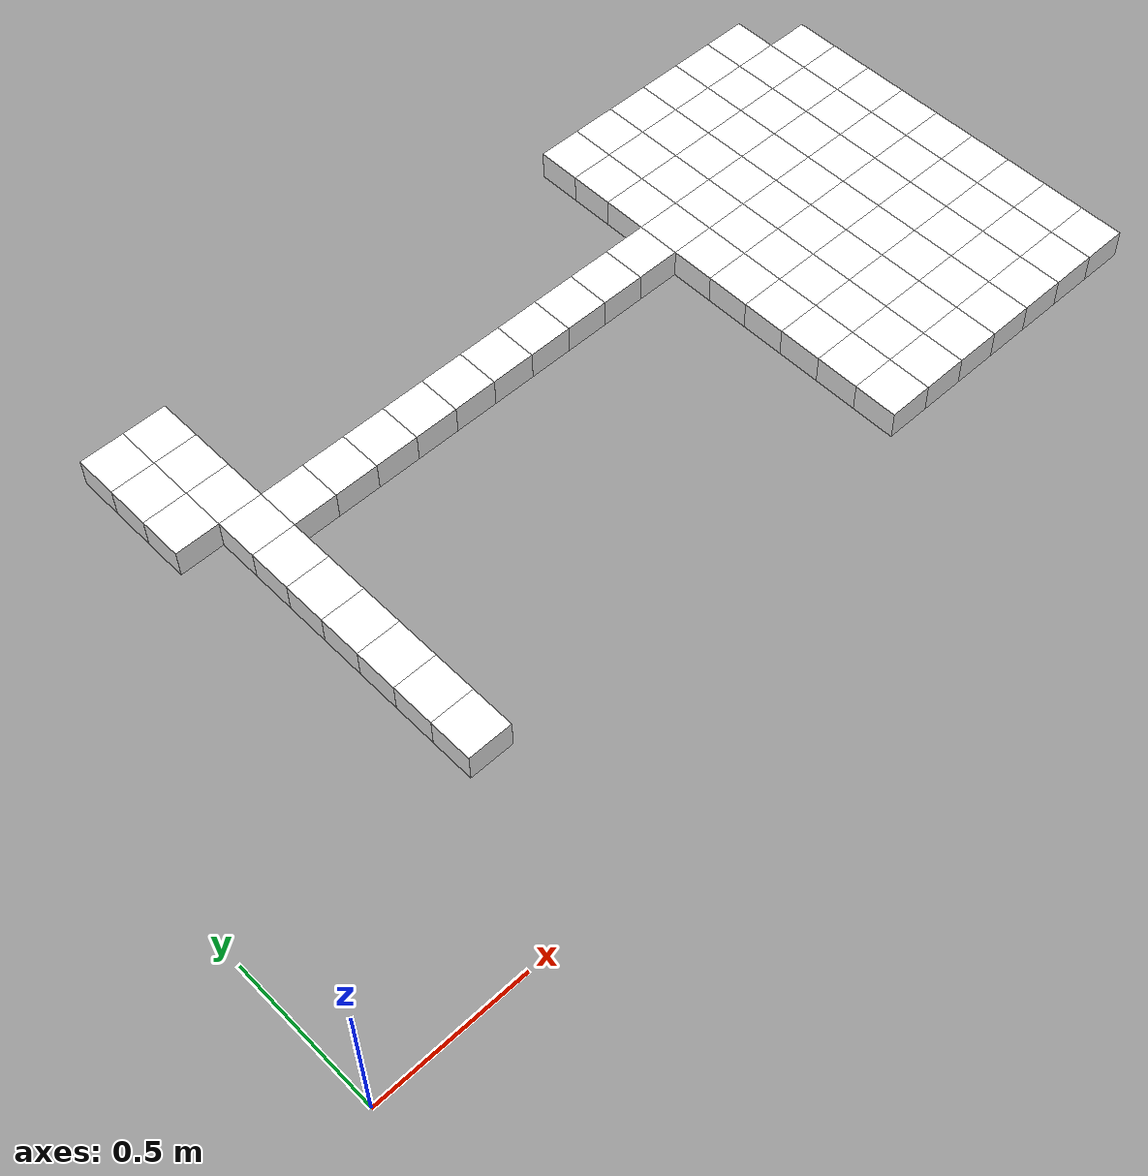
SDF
<sdf version="1.7">
 <world name="default">
  <include><uri>model://sun</uri></include>
  <model name="static_environment">
   <static>true</static>
   <link name="region_19">
    <pose>0.8499999999999992 0.6 0.0 0.0 0.0 0.0</pose>
    <collision name="region_19_collision">
     <geometry><box><size>0.15 0.15 0.1</size></box></geometry>
     <surface><friction><ode><mu>1.0</mu><mu2>1.0</mu2></ode></friction></surface>
    </collision>
    <visual name="region_19_visual">
     <geometry><box><size>0.15 0.15 0.1</size></box></geometry>
     <material><ambient>1.0 1.0 1.0 1.0</ambient><diffuse>1.0 1.0 1.0 1.0</diffuse></material>
    </visual>
   </link>
   <link name="region_39">
    <pose>0.8499999999999992 0.75 0.0 0.0 0.0 0.0</pose>
    <collision name="region_39_collision">
     <geometry><box><size>0.15 0.15 0.1</size></box></geometry>
     <surface><friction><ode><mu>1.0</mu><mu2>1.0</mu2></ode></friction></surface>
    </collision>
    <visual name="region_39_visual">
     <geometry><box><size>0.15 0.15 0.1</size></box></geometry>
     <material><ambient>1.0 1.0 1.0 1.0</ambient><diffuse>1.0 1.0 1.0 1.0</diffuse></material>
    </visual>
   </link>
   <link name="region_59">
    <pose>0.8499999999999992 0.8999999999999999 0.0 0.0 0.0 0.0</pose>
    <collision name="region_59_collision">
     <geometry><box><size>0.15 0.15 0.1</size></box></geometry>
     <surface><friction><ode><mu>1.0</mu><mu2>1.0</mu2></ode></friction></surface>
    </collision>
    <visual name="region_59_visual">
     <geometry><box><size>0.15 0.15 0.1</size></box></geometry>
     <material><ambient>1.0 1.0 1.0 1.0</ambient><diffuse>1.0 1.0 1.0 1.0</diffuse></material>
    </visual>
   </link>
   <link name="region_79">
    <pose>0.8499999999999992 1.0499999999999998 0.0 0.0 0.0 0.0</pose>
    <collision name="region_79_collision">
     <geometry><box><size>0.15 0.15 0.1</size></box></geometry>
     <surface><friction><ode><mu>1.0</mu><mu2>1.0</mu2></ode></friction></surface>
    </collision>
    <visual name="region_79_visual">
     <geometry><box><size>0.15 0.15 0.1</size></box></geometry>
     <material><ambient>1.0 1.0 1.0 1.0</ambient><diffuse>1.0 1.0 1.0 1.0</diffuse></material>
    </visual>
   </link>
   <link name="region_99">
    <pose>0.8499999999999992 1.2 0.0 0.0 0.0 0.0</pose>
    <collision name="region_99_collision">
     <geometry><box><size>0.15 0.15 0.1</size></box></geometry>
     <surface><friction><ode><mu>1.0</mu><mu2>1.0</mu2></ode></friction></surface>
    </collision>
    <visual name="region_99_visual">
     <geometry><box><size>0.15 0.15 0.1</size></box></geometry>
     <material><ambient>1.0 1.0 1.0 1.0</ambient><diffuse>1.0 1.0 1.0 1.0</diffuse></material>
    </visual>
   </link>
   <link name="region_119">
    <pose>0.8499999999999992 1.35 0.0 0.0 0.0 0.0</pose>
    <collision name="region_119_collision">
     <geometry><box><size>0.15 0.15 0.1</size></box></geometry>
     <surface><friction><ode><mu>1.0</mu><mu2>1.0</mu2></ode></friction></surface>
    </collision>
    <visual name="region_119_visual">
     <geometry><box><size>0.15 0.15 0.1</size></box></geometry>
     <material><ambient>1.0 1.0 1.0 1.0</ambient><diffuse>1.0 1.0 1.0 1.0</diffuse></material>
    </visual>
   </link>
   <link name="region_139">
    <pose>0.8499999999999992 1.5 0.0 0.0 0.0 0.0</pose>
    <collision name="region_139_collision">
     <geometry><box><size>0.15 0.15 0.1</size></box></geometry>
     <surface><friction><ode><mu>1.0</mu><mu2>1.0</mu2></ode></friction></surface>
    </collision>
    <visual name="region_139_visual">
     <geometry><box><size>0.15 0.15 0.1</size></box></geometry>
     <material><ambient>1.0 1.0 1.0 1.0</ambient><diffuse>1.0 1.0 1.0 1.0</diffuse></material>
    </visual>
   </link>
   <link name="region_158">
    <pose>0.6999999999999993 1.65 0.0 0.0 0.0 0.0</pose>
    <collision name="region_158_collision">
     <geometry><box><size>0.15 0.15 0.1</size></box></geometry>
     <surface><friction><ode><mu>1.0</mu><mu2>1.0</mu2></ode></friction></surface>
    </collision>
    <visual name="region_158_visual">
     <geometry><box><size>0.15 0.15 0.1</size></box></geometry>
     <material><ambient>1.0 1.0 1.0 1.0</ambient><diffuse>1.0 1.0 1.0 1.0</diffuse></material>
    </visual>
   </link>
   <link name="region_159">
    <pose>0.8499999999999992 1.65 0.0 0.0 0.0 0.0</pose>
    <collision name="region_159_collision">
     <geometry><box><size>0.15 0.15 0.1</size></box></geometry>
     <surface><friction><ode><mu>1.0</mu><mu2>1.0</mu2></ode></friction></surface>
    </collision>
    <visual name="region_159_visual">
     <geometry><box><size>0.15 0.15 0.1</size></box></geometry>
     <material><ambient>1.0 1.0 1.0 1.0</ambient><diffuse>1.0 1.0 1.0 1.0</diffuse></material>
    </visual>
   </link>
   <link name="region_178">
    <pose>0.6999999999999993 1.7999999999999998 0.0 0.0 0.0 0.0</pose>
    <collision name="region_178_collision">
     <geometry><box><size>0.15 0.15 0.1</size></box></geometry>
     <surface><friction><ode><mu>1.0</mu><mu2>1.0</mu2></ode></friction></surface>
    </collision>
    <visual name="region_178_visual">
     <geometry><box><size>0.15 0.15 0.1</size></box></geometry>
     <material><ambient>1.0 1.0 1.0 1.0</ambient><diffuse>1.0 1.0 1.0 1.0</diffuse></material>
    </visual>
   </link>
   <link name="region_179">
    <pose>0.8499999999999992 1.7999999999999998 0.0 0.0 0.0 0.0</pose>
    <collision name="region_179_collision">
     <geometry><box><size>0.15 0.15 0.1</size></box></geometry>
     <surface><friction><ode><mu>1.0</mu><mu2>1.0</mu2></ode></friction></surface>
    </collision>
    <visual name="region_179_visual">
     <geometry><box><size>0.15 0.15 0.1</size></box></geometry>
     <material><ambient>1.0 1.0 1.0 1.0</ambient><diffuse>1.0 1.0 1.0 1.0</diffuse></material>
    </visual>
   </link>
   <link name="region_198">
    <pose>0.6999999999999993 1.9499999999999997 0.0 0.0 0.0 0.0</pose>
    <collision name="region_198_collision">
     <geometry><box><size>0.15 0.15 0.1</size></box></geometry>
     <surface><friction><ode><mu>1.0</mu><mu2>1.0</mu2></ode></friction></surface>
    </collision>
    <visual name="region_198_visual">
     <geometry><box><size>0.15 0.15 0.1</size></box></geometry>
     <material><ambient>1.0 1.0 1.0 1.0</ambient><diffuse>1.0 1.0 1.0 1.0</diffuse></material>
    </visual>
   </link>
   <link name="region_199">
    <pose>0.8499999999999992 1.9499999999999997 0.0 0.0 0.0 0.0</pose>
    <collision name="region_199_collision">
     <geometry><box><size>0.15 0.15 0.1</size></box></geometry>
     <surface><friction><ode><mu>1.0</mu><mu2>1.0</mu2></ode></friction></surface>
    </collision>
    <visual name="region_199_visual">
     <geometry><box><size>0.15 0.15 0.1</size></box></geometry>
     <material><ambient>1.0 1.0 1.0 1.0</ambient><diffuse>1.0 1.0 1.0 1.0</diffuse></material>
    </visual>
   </link>
   <link name="region_400">
    <pose>1.0 1.5 0.0 0.0 0.0 0.0</pose>
    <collision name="region_400_collision">
     <geometry><box><size>0.15 0.15 0.1</size></box></geometry>
     <surface><friction><ode><mu>1.0</mu><mu2>1.0</mu2></ode></friction></surface>
    </collision>
    <visual name="region_400_visual">
     <geometry><box><size>0.15 0.15 0.1</size></box></geometry>
     <material><ambient>1.0 1.0 1.0 1.0</ambient><diffuse>1.0 1.0 1.0 1.0</diffuse></material>
    </visual>
   </link>
   <link name="region_401">
    <pose>1.15 1.5 0.0 0.0 0.0 0.0</pose>
    <collision name="region_401_collision">
     <geometry><box><size>0.15 0.15 0.1</size></box></geometry>
     <surface><friction><ode><mu>1.0</mu><mu2>1.0</mu2></ode></friction></surface>
    </collision>
    <visual name="region_401_visual">
     <geometry><box><size>0.15 0.15 0.1</size></box></geometry>
     <material><ambient>1.0 1.0 1.0 1.0</ambient><diffuse>1.0 1.0 1.0 1.0</diffuse></material>
    </visual>
   </link>
   <link name="region_402">
    <pose>1.2999999999999998 1.5 0.0 0.0 0.0 0.0</pose>
    <collision name="region_402_collision">
     <geometry><box><size>0.15 0.15 0.1</size></box></geometry>
     <surface><friction><ode><mu>1.0</mu><mu2>1.0</mu2></ode></friction></surface>
    </collision>
    <visual name="region_402_visual">
     <geometry><box><size>0.15 0.15 0.1</size></box></geometry>
     <material><ambient>1.0 1.0 1.0 1.0</ambient><diffuse>1.0 1.0 1.0 1.0</diffuse></material>
    </visual>
   </link>
   <link name="region_403">
    <pose>1.4499999999999997 1.5 0.0 0.0 0.0 0.0</pose>
    <collision name="region_403_collision">
     <geometry><box><size>0.15 0.15 0.1</size></box></geometry>
     <surface><friction><ode><mu>1.0</mu><mu2>1.0</mu2></ode></friction></surface>
    </collision>
    <visual name="region_403_visual">
     <geometry><box><size>0.15 0.15 0.1</size></box></geometry>
     <material><ambient>1.0 1.0 1.0 1.0</ambient><diffuse>1.0 1.0 1.0 1.0</diffuse></material>
    </visual>
   </link>
   <link name="region_404">
    <pose>1.5999999999999996 1.5 0.0 0.0 0.0 0.0</pose>
    <collision name="region_404_collision">
     <geometry><box><size>0.15 0.15 0.1</size></box></geometry>
     <surface><friction><ode><mu>1.0</mu><mu2>1.0</mu2></ode></friction></surface>
    </collision>
    <visual name="region_404_visual">
     <geometry><box><size>0.15 0.15 0.1</size></box></geometry>
     <material><ambient>1.0 1.0 1.0 1.0</ambient><diffuse>1.0 1.0 1.0 1.0</diffuse></material>
    </visual>
   </link>
   <link name="region_405">
    <pose>1.7499999999999996 1.5 0.0 0.0 0.0 0.0</pose>
    <collision name="region_405_collision">
     <geometry><box><size>0.15 0.15 0.1</size></box></geometry>
     <surface><friction><ode><mu>1.0</mu><mu2>1.0</mu2></ode></friction></surface>
    </collision>
    <visual name="region_405_visual">
     <geometry><box><size>0.15 0.15 0.1</size></box></geometry>
     <material><ambient>1.0 1.0 1.0 1.0</ambient><diffuse>1.0 1.0 1.0 1.0</diffuse></material>
    </visual>
   </link>
   <link name="region_406">
    <pose>1.8999999999999995 1.5 0.0 0.0 0.0 0.0</pose>
    <collision name="region_406_collision">
     <geometry><box><size>0.15 0.15 0.1</size></box></geometry>
     <surface><friction><ode><mu>1.0</mu><mu2>1.0</mu2></ode></friction></surface>
    </collision>
    <visual name="region_406_visual">
     <geometry><box><size>0.15 0.15 0.1</size></box></geometry>
     <material><ambient>1.0 1.0 1.0 1.0</ambient><diffuse>1.0 1.0 1.0 1.0</diffuse></material>
    </visual>
   </link>
   <link name="region_407">
    <pose>2.05 1.5 0.0 0.0 0.0 0.0</pose>
    <collision name="region_407_collision">
     <geometry><box><size>0.15 0.15 0.1</size></box></geometry>
     <surface><friction><ode><mu>1.0</mu><mu2>1.0</mu2></ode></friction></surface>
    </collision>
    <visual name="region_407_visual">
     <geometry><box><size>0.15 0.15 0.1</size></box></geometry>
     <material><ambient>1.0 1.0 1.0 1.0</ambient><diffuse>1.0 1.0 1.0 1.0</diffuse></material>
    </visual>
   </link>
   <link name="region_408">
    <pose>2.2 1.5 0.0 0.0 0.0 0.0</pose>
    <collision name="region_408_collision">
     <geometry><box><size>0.15 0.15 0.1</size></box></geometry>
     <surface><friction><ode><mu>1.0</mu><mu2>1.0</mu2></ode></friction></surface>
    </collision>
    <visual name="region_408_visual">
     <geometry><box><size>0.15 0.15 0.1</size></box></geometry>
     <material><ambient>1.0 1.0 1.0 1.0</ambient><diffuse>1.0 1.0 1.0 1.0</diffuse></material>
    </visual>
   </link>
   <link name="region_409">
    <pose>2.3500000000000005 1.5 0.0 0.0 0.0 0.0</pose>
    <collision name="region_409_collision">
     <geometry><box><size>0.15 0.15 0.1</size></box></geometry>
     <surface><friction><ode><mu>1.0</mu><mu2>1.0</mu2></ode></friction></surface>
    </collision>
    <visual name="region_409_visual">
     <geometry><box><size>0.15 0.15 0.1</size></box></geometry>
     <material><ambient>1.0 1.0 1.0 1.0</ambient><diffuse>1.0 1.0 1.0 1.0</diffuse></material>
    </visual>
   </link>
   <link name="region_420">
    <pose>2.5 0.6 0.0 0.0 0.0 0.0</pose>
    <collision name="region_420_collision">
     <geometry><box><size>0.15 0.15 0.1</size></box></geometry>
     <surface><friction><ode><mu>1.0</mu><mu2>1.0</mu2></ode></friction></surface>
    </collision>
    <visual name="region_420_visual">
     <geometry><box><size>0.15 0.15 0.1</size></box></geometry>
     <material><ambient>1.0 1.0 1.0 1.0</ambient><diffuse>1.0 1.0 1.0 1.0</diffuse></material>
    </visual>
   </link>
   <link name="region_421">
    <pose>2.6500000000000004 0.6 0.0 0.0 0.0 0.0</pose>
    <collision name="region_421_collision">
     <geometry><box><size>0.15 0.15 0.1</size></box></geometry>
     <surface><friction><ode><mu>1.0</mu><mu2>1.0</mu2></ode></friction></surface>
    </collision>
    <visual name="region_421_visual">
     <geometry><box><size>0.15 0.15 0.1</size></box></geometry>
     <material><ambient>1.0 1.0 1.0 1.0</ambient><diffuse>1.0 1.0 1.0 1.0</diffuse></material>
    </visual>
   </link>
   <link name="region_422">
    <pose>2.8000000000000007 0.6 0.0 0.0 0.0 0.0</pose>
    <collision name="region_422_collision">
     <geometry><box><size>0.15 0.15 0.1</size></box></geometry>
     <surface><friction><ode><mu>1.0</mu><mu2>1.0</mu2></ode></friction></surface>
    </collision>
    <visual name="region_422_visual">
     <geometry><box><size>0.15 0.15 0.1</size></box></geometry>
     <material><ambient>1.0 1.0 1.0 1.0</ambient><diffuse>1.0 1.0 1.0 1.0</diffuse></material>
    </visual>
   </link>
   <link name="region_423">
    <pose>2.950000000000001 0.6 0.0 0.0 0.0 0.0</pose>
    <collision name="region_423_collision">
     <geometry><box><size>0.15 0.15 0.1</size></box></geometry>
     <surface><friction><ode><mu>1.0</mu><mu2>1.0</mu2></ode></friction></surface>
    </collision>
    <visual name="region_423_visual">
     <geometry><box><size>0.15 0.15 0.1</size></box></geometry>
     <material><ambient>1.0 1.0 1.0 1.0</ambient><diffuse>1.0 1.0 1.0 1.0</diffuse></material>
    </visual>
   </link>
   <link name="region_424">
    <pose>3.1000000000000014 0.6 0.0 0.0 0.0 0.0</pose>
    <collision name="region_424_collision">
     <geometry><box><size>0.15 0.15 0.1</size></box></geometry>
     <surface><friction><ode><mu>1.0</mu><mu2>1.0</mu2></ode></friction></surface>
    </collision>
    <visual name="region_424_visual">
     <geometry><box><size>0.15 0.15 0.1</size></box></geometry>
     <material><ambient>1.0 1.0 1.0 1.0</ambient><diffuse>1.0 1.0 1.0 1.0</diffuse></material>
    </visual>
   </link>
   <link name="region_425">
    <pose>3.2500000000000018 0.6 0.0 0.0 0.0 0.0</pose>
    <collision name="region_425_collision">
     <geometry><box><size>0.15 0.15 0.1</size></box></geometry>
     <surface><friction><ode><mu>1.0</mu><mu2>1.0</mu2></ode></friction></surface>
    </collision>
    <visual name="region_425_visual">
     <geometry><box><size>0.15 0.15 0.1</size></box></geometry>
     <material><ambient>1.0 1.0 1.0 1.0</ambient><diffuse>1.0 1.0 1.0 1.0</diffuse></material>
    </visual>
   </link>
   <link name="region_426">
    <pose>3.400000000000002 0.6 0.0 0.0 0.0 0.0</pose>
    <collision name="region_426_collision">
     <geometry><box><size>0.15 0.15 0.1</size></box></geometry>
     <surface><friction><ode><mu>1.0</mu><mu2>1.0</mu2></ode></friction></surface>
    </collision>
    <visual name="region_426_visual">
     <geometry><box><size>0.15 0.15 0.1</size></box></geometry>
     <material><ambient>1.0 1.0 1.0 1.0</ambient><diffuse>1.0 1.0 1.0 1.0</diffuse></material>
    </visual>
   </link>
   <link name="region_440">
    <pose>2.5 0.75 0.0 0.0 0.0 0.0</pose>
    <collision name="region_440_collision">
     <geometry><box><size>0.15 0.15 0.1</size></box></geometry>
     <surface><friction><ode><mu>1.0</mu><mu2>1.0</mu2></ode></friction></surface>
    </collision>
    <visual name="region_440_visual">
     <geometry><box><size>0.15 0.15 0.1</size></box></geometry>
     <material><ambient>1.0 1.0 1.0 1.0</ambient><diffuse>1.0 1.0 1.0 1.0</diffuse></material>
    </visual>
   </link>
   <link name="region_441">
    <pose>2.6500000000000004 0.75 0.0 0.0 0.0 0.0</pose>
    <collision name="region_441_collision">
     <geometry><box><size>0.15 0.15 0.1</size></box></geometry>
     <surface><friction><ode><mu>1.0</mu><mu2>1.0</mu2></ode></friction></surface>
    </collision>
    <visual name="region_441_visual">
     <geometry><box><size>0.15 0.15 0.1</size></box></geometry>
     <material><ambient>1.0 1.0 1.0 1.0</ambient><diffuse>1.0 1.0 1.0 1.0</diffuse></material>
    </visual>
   </link>
   <link name="region_442">
    <pose>2.8000000000000007 0.75 0.0 0.0 0.0 0.0</pose>
    <collision name="region_442_collision">
     <geometry><box><size>0.15 0.15 0.1</size></box></geometry>
     <surface><friction><ode><mu>1.0</mu><mu2>1.0</mu2></ode></friction></surface>
    </collision>
    <visual name="region_442_visual">
     <geometry><box><size>0.15 0.15 0.1</size></box></geometry>
     <material><ambient>1.0 1.0 1.0 1.0</ambient><diffuse>1.0 1.0 1.0 1.0</diffuse></material>
    </visual>
   </link>
   <link name="region_443">
    <pose>2.950000000000001 0.75 0.0 0.0 0.0 0.0</pose>
    <collision name="region_443_collision">
     <geometry><box><size>0.15 0.15 0.1</size></box></geometry>
     <surface><friction><ode><mu>1.0</mu><mu2>1.0</mu2></ode></friction></surface>
    </collision>
    <visual name="region_443_visual">
     <geometry><box><size>0.15 0.15 0.1</size></box></geometry>
     <material><ambient>1.0 1.0 1.0 1.0</ambient><diffuse>1.0 1.0 1.0 1.0</diffuse></material>
    </visual>
   </link>
   <link name="region_444">
    <pose>3.1000000000000014 0.75 0.0 0.0 0.0 0.0</pose>
    <collision name="region_444_collision">
     <geometry><box><size>0.15 0.15 0.1</size></box></geometry>
     <surface><friction><ode><mu>1.0</mu><mu2>1.0</mu2></ode></friction></surface>
    </collision>
    <visual name="region_444_visual">
     <geometry><box><size>0.15 0.15 0.1</size></box></geometry>
     <material><ambient>1.0 1.0 1.0 1.0</ambient><diffuse>1.0 1.0 1.0 1.0</diffuse></material>
    </visual>
   </link>
   <link name="region_445">
    <pose>3.2500000000000018 0.75 0.0 0.0 0.0 0.0</pose>
    <collision name="region_445_collision">
     <geometry><box><size>0.15 0.15 0.1</size></box></geometry>
     <surface><friction><ode><mu>1.0</mu><mu2>1.0</mu2></ode></friction></surface>
    </collision>
    <visual name="region_445_visual">
     <geometry><box><size>0.15 0.15 0.1</size></box></geometry>
     <material><ambient>1.0 1.0 1.0 1.0</ambient><diffuse>1.0 1.0 1.0 1.0</diffuse></material>
    </visual>
   </link>
   <link name="region_446">
    <pose>3.400000000000002 0.75 0.0 0.0 0.0 0.0</pose>
    <collision name="region_446_collision">
     <geometry><box><size>0.15 0.15 0.1</size></box></geometry>
     <surface><friction><ode><mu>1.0</mu><mu2>1.0</mu2></ode></friction></surface>
    </collision>
    <visual name="region_446_visual">
     <geometry><box><size>0.15 0.15 0.1</size></box></geometry>
     <material><ambient>1.0 1.0 1.0 1.0</ambient><diffuse>1.0 1.0 1.0 1.0</diffuse></material>
    </visual>
   </link>
   <link name="region_460">
    <pose>2.5 0.8999999999999999 0.0 0.0 0.0 0.0</pose>
    <collision name="region_460_collision">
     <geometry><box><size>0.15 0.15 0.1</size></box></geometry>
     <surface><friction><ode><mu>1.0</mu><mu2>1.0</mu2></ode></friction></surface>
    </collision>
    <visual name="region_460_visual">
     <geometry><box><size>0.15 0.15 0.1</size></box></geometry>
     <material><ambient>1.0 1.0 1.0 1.0</ambient><diffuse>1.0 1.0 1.0 1.0</diffuse></material>
    </visual>
   </link>
   <link name="region_461">
    <pose>2.6500000000000004 0.8999999999999999 0.0 0.0 0.0 0.0</pose>
    <collision name="region_461_collision">
     <geometry><box><size>0.15 0.15 0.1</size></box></geometry>
     <surface><friction><ode><mu>1.0</mu><mu2>1.0</mu2></ode></friction></surface>
    </collision>
    <visual name="region_461_visual">
     <geometry><box><size>0.15 0.15 0.1</size></box></geometry>
     <material><ambient>1.0 1.0 1.0 1.0</ambient><diffuse>1.0 1.0 1.0 1.0</diffuse></material>
    </visual>
   </link>
   <link name="region_462">
    <pose>2.8000000000000007 0.8999999999999999 0.0 0.0 0.0 0.0</pose>
    <collision name="region_462_collision">
     <geometry><box><size>0.15 0.15 0.1</size></box></geometry>
     <surface><friction><ode><mu>1.0</mu><mu2>1.0</mu2></ode></friction></surface>
    </collision>
    <visual name="region_462_visual">
     <geometry><box><size>0.15 0.15 0.1</size></box></geometry>
     <material><ambient>1.0 1.0 1.0 1.0</ambient><diffuse>1.0 1.0 1.0 1.0</diffuse></material>
    </visual>
   </link>
   <link name="region_463">
    <pose>2.950000000000001 0.8999999999999999 0.0 0.0 0.0 0.0</pose>
    <collision name="region_463_collision">
     <geometry><box><size>0.15 0.15 0.1</size></box></geometry>
     <surface><friction><ode><mu>1.0</mu><mu2>1.0</mu2></ode></friction></surface>
    </collision>
    <visual name="region_463_visual">
     <geometry><box><size>0.15 0.15 0.1</size></box></geometry>
     <material><ambient>1.0 1.0 1.0 1.0</ambient><diffuse>1.0 1.0 1.0 1.0</diffuse></material>
    </visual>
   </link>
   <link name="region_464">
    <pose>3.1000000000000014 0.8999999999999999 0.0 0.0 0.0 0.0</pose>
    <collision name="region_464_collision">
     <geometry><box><size>0.15 0.15 0.1</size></box></geometry>
     <surface><friction><ode><mu>1.0</mu><mu2>1.0</mu2></ode></friction></surface>
    </collision>
    <visual name="region_464_visual">
     <geometry><box><size>0.15 0.15 0.1</size></box></geometry>
     <material><ambient>1.0 1.0 1.0 1.0</ambient><diffuse>1.0 1.0 1.0 1.0</diffuse></material>
    </visual>
   </link>
   <link name="region_465">
    <pose>3.2500000000000018 0.8999999999999999 0.0 0.0 0.0 0.0</pose>
    <collision name="region_465_collision">
     <geometry><box><size>0.15 0.15 0.1</size></box></geometry>
     <surface><friction><ode><mu>1.0</mu><mu2>1.0</mu2></ode></friction></surface>
    </collision>
    <visual name="region_465_visual">
     <geometry><box><size>0.15 0.15 0.1</size></box></geometry>
     <material><ambient>1.0 1.0 1.0 1.0</ambient><diffuse>1.0 1.0 1.0 1.0</diffuse></material>
    </visual>
   </link>
   <link name="region_466">
    <pose>3.400000000000002 0.8999999999999999 0.0 0.0 0.0 0.0</pose>
    <collision name="region_466_collision">
     <geometry><box><size>0.15 0.15 0.1</size></box></geometry>
     <surface><friction><ode><mu>1.0</mu><mu2>1.0</mu2></ode></friction></surface>
    </collision>
    <visual name="region_466_visual">
     <geometry><box><size>0.15 0.15 0.1</size></box></geometry>
     <material><ambient>1.0 1.0 1.0 1.0</ambient><diffuse>1.0 1.0 1.0 1.0</diffuse></material>
    </visual>
   </link>
   <link name="region_480">
    <pose>2.5 1.0499999999999998 0.0 0.0 0.0 0.0</pose>
    <collision name="region_480_collision">
     <geometry><box><size>0.15 0.15 0.1</size></box></geometry>
     <surface><friction><ode><mu>1.0</mu><mu2>1.0</mu2></ode></friction></surface>
    </collision>
    <visual name="region_480_visual">
     <geometry><box><size>0.15 0.15 0.1</size></box></geometry>
     <material><ambient>1.0 1.0 1.0 1.0</ambient><diffuse>1.0 1.0 1.0 1.0</diffuse></material>
    </visual>
   </link>
   <link name="region_481">
    <pose>2.6500000000000004 1.0499999999999998 0.0 0.0 0.0 0.0</pose>
    <collision name="region_481_collision">
     <geometry><box><size>0.15 0.15 0.1</size></box></geometry>
     <surface><friction><ode><mu>1.0</mu><mu2>1.0</mu2></ode></friction></surface>
    </collision>
    <visual name="region_481_visual">
     <geometry><box><size>0.15 0.15 0.1</size></box></geometry>
     <material><ambient>1.0 1.0 1.0 1.0</ambient><diffuse>1.0 1.0 1.0 1.0</diffuse></material>
    </visual>
   </link>
   <link name="region_482">
    <pose>2.8000000000000007 1.0499999999999998 0.0 0.0 0.0 0.0</pose>
    <collision name="region_482_collision">
     <geometry><box><size>0.15 0.15 0.1</size></box></geometry>
     <surface><friction><ode><mu>1.0</mu><mu2>1.0</mu2></ode></friction></surface>
    </collision>
    <visual name="region_482_visual">
     <geometry><box><size>0.15 0.15 0.1</size></box></geometry>
     <material><ambient>1.0 1.0 1.0 1.0</ambient><diffuse>1.0 1.0 1.0 1.0</diffuse></material>
    </visual>
   </link>
   <link name="region_483">
    <pose>2.950000000000001 1.0499999999999998 0.0 0.0 0.0 0.0</pose>
    <collision name="region_483_collision">
     <geometry><box><size>0.15 0.15 0.1</size></box></geometry>
     <surface><friction><ode><mu>1.0</mu><mu2>1.0</mu2></ode></friction></surface>
    </collision>
    <visual name="region_483_visual">
     <geometry><box><size>0.15 0.15 0.1</size></box></geometry>
     <material><ambient>1.0 1.0 1.0 1.0</ambient><diffuse>1.0 1.0 1.0 1.0</diffuse></material>
    </visual>
   </link>
   <link name="region_484">
    <pose>3.1000000000000014 1.0499999999999998 0.0 0.0 0.0 0.0</pose>
    <collision name="region_484_collision">
     <geometry><box><size>0.15 0.15 0.1</size></box></geometry>
     <surface><friction><ode><mu>1.0</mu><mu2>1.0</mu2></ode></friction></surface>
    </collision>
    <visual name="region_484_visual">
     <geometry><box><size>0.15 0.15 0.1</size></box></geometry>
     <material><ambient>1.0 1.0 1.0 1.0</ambient><diffuse>1.0 1.0 1.0 1.0</diffuse></material>
    </visual>
   </link>
   <link name="region_485">
    <pose>3.2500000000000018 1.0499999999999998 0.0 0.0 0.0 0.0</pose>
    <collision name="region_485_collision">
     <geometry><box><size>0.15 0.15 0.1</size></box></geometry>
     <surface><friction><ode><mu>1.0</mu><mu2>1.0</mu2></ode></friction></surface>
    </collision>
    <visual name="region_485_visual">
     <geometry><box><size>0.15 0.15 0.1</size></box></geometry>
     <material><ambient>1.0 1.0 1.0 1.0</ambient><diffuse>1.0 1.0 1.0 1.0</diffuse></material>
    </visual>
   </link>
   <link name="region_486">
    <pose>3.400000000000002 1.0499999999999998 0.0 0.0 0.0 0.0</pose>
    <collision name="region_486_collision">
     <geometry><box><size>0.15 0.15 0.1</size></box></geometry>
     <surface><friction><ode><mu>1.0</mu><mu2>1.0</mu2></ode></friction></surface>
    </collision>
    <visual name="region_486_visual">
     <geometry><box><size>0.15 0.15 0.1</size></box></geometry>
     <material><ambient>1.0 1.0 1.0 1.0</ambient><diffuse>1.0 1.0 1.0 1.0</diffuse></material>
    </visual>
   </link>
   <link name="region_500">
    <pose>2.5 1.2 0.0 0.0 0.0 0.0</pose>
    <collision name="region_500_collision">
     <geometry><box><size>0.15 0.15 0.1</size></box></geometry>
     <surface><friction><ode><mu>1.0</mu><mu2>1.0</mu2></ode></friction></surface>
    </collision>
    <visual name="region_500_visual">
     <geometry><box><size>0.15 0.15 0.1</size></box></geometry>
     <material><ambient>1.0 1.0 1.0 1.0</ambient><diffuse>1.0 1.0 1.0 1.0</diffuse></material>
    </visual>
   </link>
   <link name="region_501">
    <pose>2.6500000000000004 1.2 0.0 0.0 0.0 0.0</pose>
    <collision name="region_501_collision">
     <geometry><box><size>0.15 0.15 0.1</size></box></geometry>
     <surface><friction><ode><mu>1.0</mu><mu2>1.0</mu2></ode></friction></surface>
    </collision>
    <visual name="region_501_visual">
     <geometry><box><size>0.15 0.15 0.1</size></box></geometry>
     <material><ambient>1.0 1.0 1.0 1.0</ambient><diffuse>1.0 1.0 1.0 1.0</diffuse></material>
    </visual>
   </link>
   <link name="region_502">
    <pose>2.8000000000000007 1.2 0.0 0.0 0.0 0.0</pose>
    <collision name="region_502_collision">
     <geometry><box><size>0.15 0.15 0.1</size></box></geometry>
     <surface><friction><ode><mu>1.0</mu><mu2>1.0</mu2></ode></friction></surface>
    </collision>
    <visual name="region_502_visual">
     <geometry><box><size>0.15 0.15 0.1</size></box></geometry>
     <material><ambient>1.0 1.0 1.0 1.0</ambient><diffuse>1.0 1.0 1.0 1.0</diffuse></material>
    </visual>
   </link>
   <link name="region_503">
    <pose>2.950000000000001 1.2 0.0 0.0 0.0 0.0</pose>
    <collision name="region_503_collision">
     <geometry><box><size>0.15 0.15 0.1</size></box></geometry>
     <surface><friction><ode><mu>1.0</mu><mu2>1.0</mu2></ode></friction></surface>
    </collision>
    <visual name="region_503_visual">
     <geometry><box><size>0.15 0.15 0.1</size></box></geometry>
     <material><ambient>1.0 1.0 1.0 1.0</ambient><diffuse>1.0 1.0 1.0 1.0</diffuse></material>
    </visual>
   </link>
   <link name="region_504">
    <pose>3.1000000000000014 1.2 0.0 0.0 0.0 0.0</pose>
    <collision name="region_504_collision">
     <geometry><box><size>0.15 0.15 0.1</size></box></geometry>
     <surface><friction><ode><mu>1.0</mu><mu2>1.0</mu2></ode></friction></surface>
    </collision>
    <visual name="region_504_visual">
     <geometry><box><size>0.15 0.15 0.1</size></box></geometry>
     <material><ambient>1.0 1.0 1.0 1.0</ambient><diffuse>1.0 1.0 1.0 1.0</diffuse></material>
    </visual>
   </link>
   <link name="region_505">
    <pose>3.2500000000000018 1.2 0.0 0.0 0.0 0.0</pose>
    <collision name="region_505_collision">
     <geometry><box><size>0.15 0.15 0.1</size></box></geometry>
     <surface><friction><ode><mu>1.0</mu><mu2>1.0</mu2></ode></friction></surface>
    </collision>
    <visual name="region_505_visual">
     <geometry><box><size>0.15 0.15 0.1</size></box></geometry>
     <material><ambient>1.0 1.0 1.0 1.0</ambient><diffuse>1.0 1.0 1.0 1.0</diffuse></material>
    </visual>
   </link>
   <link name="region_506">
    <pose>3.400000000000002 1.2 0.0 0.0 0.0 0.0</pose>
    <collision name="region_506_collision">
     <geometry><box><size>0.15 0.15 0.1</size></box></geometry>
     <surface><friction><ode><mu>1.0</mu><mu2>1.0</mu2></ode></friction></surface>
    </collision>
    <visual name="region_506_visual">
     <geometry><box><size>0.15 0.15 0.1</size></box></geometry>
     <material><ambient>1.0 1.0 1.0 1.0</ambient><diffuse>1.0 1.0 1.0 1.0</diffuse></material>
    </visual>
   </link>
   <link name="region_520">
    <pose>2.5 1.35 0.0 0.0 0.0 0.0</pose>
    <collision name="region_520_collision">
     <geometry><box><size>0.15 0.15 0.1</size></box></geometry>
     <surface><friction><ode><mu>1.0</mu><mu2>1.0</mu2></ode></friction></surface>
    </collision>
    <visual name="region_520_visual">
     <geometry><box><size>0.15 0.15 0.1</size></box></geometry>
     <material><ambient>1.0 1.0 1.0 1.0</ambient><diffuse>1.0 1.0 1.0 1.0</diffuse></material>
    </visual>
   </link>
   <link name="region_521">
    <pose>2.6500000000000004 1.35 0.0 0.0 0.0 0.0</pose>
    <collision name="region_521_collision">
     <geometry><box><size>0.15 0.15 0.1</size></box></geometry>
     <surface><friction><ode><mu>1.0</mu><mu2>1.0</mu2></ode></friction></surface>
    </collision>
    <visual name="region_521_visual">
     <geometry><box><size>0.15 0.15 0.1</size></box></geometry>
     <material><ambient>1.0 1.0 1.0 1.0</ambient><diffuse>1.0 1.0 1.0 1.0</diffuse></material>
    </visual>
   </link>
   <link name="region_522">
    <pose>2.8000000000000007 1.35 0.0 0.0 0.0 0.0</pose>
    <collision name="region_522_collision">
     <geometry><box><size>0.15 0.15 0.1</size></box></geometry>
     <surface><friction><ode><mu>1.0</mu><mu2>1.0</mu2></ode></friction></surface>
    </collision>
    <visual name="region_522_visual">
     <geometry><box><size>0.15 0.15 0.1</size></box></geometry>
     <material><ambient>1.0 1.0 1.0 1.0</ambient><diffuse>1.0 1.0 1.0 1.0</diffuse></material>
    </visual>
   </link>
   <link name="region_523">
    <pose>2.950000000000001 1.35 0.0 0.0 0.0 0.0</pose>
    <collision name="region_523_collision">
     <geometry><box><size>0.15 0.15 0.1</size></box></geometry>
     <surface><friction><ode><mu>1.0</mu><mu2>1.0</mu2></ode></friction></surface>
    </collision>
    <visual name="region_523_visual">
     <geometry><box><size>0.15 0.15 0.1</size></box></geometry>
     <material><ambient>1.0 1.0 1.0 1.0</ambient><diffuse>1.0 1.0 1.0 1.0</diffuse></material>
    </visual>
   </link>
   <link name="region_524">
    <pose>3.1000000000000014 1.35 0.0 0.0 0.0 0.0</pose>
    <collision name="region_524_collision">
     <geometry><box><size>0.15 0.15 0.1</size></box></geometry>
     <surface><friction><ode><mu>1.0</mu><mu2>1.0</mu2></ode></friction></surface>
    </collision>
    <visual name="region_524_visual">
     <geometry><box><size>0.15 0.15 0.1</size></box></geometry>
     <material><ambient>1.0 1.0 1.0 1.0</ambient><diffuse>1.0 1.0 1.0 1.0</diffuse></material>
    </visual>
   </link>
   <link name="region_525">
    <pose>3.2500000000000018 1.35 0.0 0.0 0.0 0.0</pose>
    <collision name="region_525_collision">
     <geometry><box><size>0.15 0.15 0.1</size></box></geometry>
     <surface><friction><ode><mu>1.0</mu><mu2>1.0</mu2></ode></friction></surface>
    </collision>
    <visual name="region_525_visual">
     <geometry><box><size>0.15 0.15 0.1</size></box></geometry>
     <material><ambient>1.0 1.0 1.0 1.0</ambient><diffuse>1.0 1.0 1.0 1.0</diffuse></material>
    </visual>
   </link>
   <link name="region_526">
    <pose>3.400000000000002 1.35 0.0 0.0 0.0 0.0</pose>
    <collision name="region_526_collision">
     <geometry><box><size>0.15 0.15 0.1</size></box></geometry>
     <surface><friction><ode><mu>1.0</mu><mu2>1.0</mu2></ode></friction></surface>
    </collision>
    <visual name="region_526_visual">
     <geometry><box><size>0.15 0.15 0.1</size></box></geometry>
     <material><ambient>1.0 1.0 1.0 1.0</ambient><diffuse>1.0 1.0 1.0 1.0</diffuse></material>
    </visual>
   </link>
   <link name="region_540">
    <pose>2.5 1.5 0.0 0.0 0.0 0.0</pose>
    <collision name="region_540_collision">
     <geometry><box><size>0.15 0.15 0.1</size></box></geometry>
     <surface><friction><ode><mu>1.0</mu><mu2>1.0</mu2></ode></friction></surface>
    </collision>
    <visual name="region_540_visual">
     <geometry><box><size>0.15 0.15 0.1</size></box></geometry>
     <material><ambient>1.0 1.0 1.0 1.0</ambient><diffuse>1.0 1.0 1.0 1.0</diffuse></material>
    </visual>
   </link>
   <link name="region_541">
    <pose>2.6500000000000004 1.5 0.0 0.0 0.0 0.0</pose>
    <collision name="region_541_collision">
     <geometry><box><size>0.15 0.15 0.1</size></box></geometry>
     <surface><friction><ode><mu>1.0</mu><mu2>1.0</mu2></ode></friction></surface>
    </collision>
    <visual name="region_541_visual">
     <geometry><box><size>0.15 0.15 0.1</size></box></geometry>
     <material><ambient>1.0 1.0 1.0 1.0</ambient><diffuse>1.0 1.0 1.0 1.0</diffuse></material>
    </visual>
   </link>
   <link name="region_542">
    <pose>2.8000000000000007 1.5 0.0 0.0 0.0 0.0</pose>
    <collision name="region_542_collision">
     <geometry><box><size>0.15 0.15 0.1</size></box></geometry>
     <surface><friction><ode><mu>1.0</mu><mu2>1.0</mu2></ode></friction></surface>
    </collision>
    <visual name="region_542_visual">
     <geometry><box><size>0.15 0.15 0.1</size></box></geometry>
     <material><ambient>1.0 1.0 1.0 1.0</ambient><diffuse>1.0 1.0 1.0 1.0</diffuse></material>
    </visual>
   </link>
   <link name="region_543">
    <pose>2.950000000000001 1.5 0.0 0.0 0.0 0.0</pose>
    <collision name="region_543_collision">
     <geometry><box><size>0.15 0.15 0.1</size></box></geometry>
     <surface><friction><ode><mu>1.0</mu><mu2>1.0</mu2></ode></friction></surface>
    </collision>
    <visual name="region_543_visual">
     <geometry><box><size>0.15 0.15 0.1</size></box></geometry>
     <material><ambient>1.0 1.0 1.0 1.0</ambient><diffuse>1.0 1.0 1.0 1.0</diffuse></material>
    </visual>
   </link>
   <link name="region_544">
    <pose>3.1000000000000014 1.5 0.0 0.0 0.0 0.0</pose>
    <collision name="region_544_collision">
     <geometry><box><size>0.15 0.15 0.1</size></box></geometry>
     <surface><friction><ode><mu>1.0</mu><mu2>1.0</mu2></ode></friction></surface>
    </collision>
    <visual name="region_544_visual">
     <geometry><box><size>0.15 0.15 0.1</size></box></geometry>
     <material><ambient>1.0 1.0 1.0 1.0</ambient><diffuse>1.0 1.0 1.0 1.0</diffuse></material>
    </visual>
   </link>
   <link name="region_545">
    <pose>3.2500000000000018 1.5 0.0 0.0 0.0 0.0</pose>
    <collision name="region_545_collision">
     <geometry><box><size>0.15 0.15 0.1</size></box></geometry>
     <surface><friction><ode><mu>1.0</mu><mu2>1.0</mu2></ode></friction></surface>
    </collision>
    <visual name="region_545_visual">
     <geometry><box><size>0.15 0.15 0.1</size></box></geometry>
     <material><ambient>1.0 1.0 1.0 1.0</ambient><diffuse>1.0 1.0 1.0 1.0</diffuse></material>
    </visual>
   </link>
   <link name="region_546">
    <pose>3.400000000000002 1.5 0.0 0.0 0.0 0.0</pose>
    <collision name="region_546_collision">
     <geometry><box><size>0.15 0.15 0.1</size></box></geometry>
     <surface><friction><ode><mu>1.0</mu><mu2>1.0</mu2></ode></friction></surface>
    </collision>
    <visual name="region_546_visual">
     <geometry><box><size>0.15 0.15 0.1</size></box></geometry>
     <material><ambient>1.0 1.0 1.0 1.0</ambient><diffuse>1.0 1.0 1.0 1.0</diffuse></material>
    </visual>
   </link>
   <link name="region_560">
    <pose>2.5 1.65 0.0 0.0 0.0 0.0</pose>
    <collision name="region_560_collision">
     <geometry><box><size>0.15 0.15 0.1</size></box></geometry>
     <surface><friction><ode><mu>1.0</mu><mu2>1.0</mu2></ode></friction></surface>
    </collision>
    <visual name="region_560_visual">
     <geometry><box><size>0.15 0.15 0.1</size></box></geometry>
     <material><ambient>1.0 1.0 1.0 1.0</ambient><diffuse>1.0 1.0 1.0 1.0</diffuse></material>
    </visual>
   </link>
   <link name="region_561">
    <pose>2.6500000000000004 1.65 0.0 0.0 0.0 0.0</pose>
    <collision name="region_561_collision">
     <geometry><box><size>0.15 0.15 0.1</size></box></geometry>
     <surface><friction><ode><mu>1.0</mu><mu2>1.0</mu2></ode></friction></surface>
    </collision>
    <visual name="region_561_visual">
     <geometry><box><size>0.15 0.15 0.1</size></box></geometry>
     <material><ambient>1.0 1.0 1.0 1.0</ambient><diffuse>1.0 1.0 1.0 1.0</diffuse></material>
    </visual>
   </link>
   <link name="region_562">
    <pose>2.8000000000000007 1.65 0.0 0.0 0.0 0.0</pose>
    <collision name="region_562_collision">
     <geometry><box><size>0.15 0.15 0.1</size></box></geometry>
     <surface><friction><ode><mu>1.0</mu><mu2>1.0</mu2></ode></friction></surface>
    </collision>
    <visual name="region_562_visual">
     <geometry><box><size>0.15 0.15 0.1</size></box></geometry>
     <material><ambient>1.0 1.0 1.0 1.0</ambient><diffuse>1.0 1.0 1.0 1.0</diffuse></material>
    </visual>
   </link>
   <link name="region_563">
    <pose>2.950000000000001 1.65 0.0 0.0 0.0 0.0</pose>
    <collision name="region_563_collision">
     <geometry><box><size>0.15 0.15 0.1</size></box></geometry>
     <surface><friction><ode><mu>1.0</mu><mu2>1.0</mu2></ode></friction></surface>
    </collision>
    <visual name="region_563_visual">
     <geometry><box><size>0.15 0.15 0.1</size></box></geometry>
     <material><ambient>1.0 1.0 1.0 1.0</ambient><diffuse>1.0 1.0 1.0 1.0</diffuse></material>
    </visual>
   </link>
   <link name="region_564">
    <pose>3.1000000000000014 1.65 0.0 0.0 0.0 0.0</pose>
    <collision name="region_564_collision">
     <geometry><box><size>0.15 0.15 0.1</size></box></geometry>
     <surface><friction><ode><mu>1.0</mu><mu2>1.0</mu2></ode></friction></surface>
    </collision>
    <visual name="region_564_visual">
     <geometry><box><size>0.15 0.15 0.1</size></box></geometry>
     <material><ambient>1.0 1.0 1.0 1.0</ambient><diffuse>1.0 1.0 1.0 1.0</diffuse></material>
    </visual>
   </link>
   <link name="region_565">
    <pose>3.2500000000000018 1.65 0.0 0.0 0.0 0.0</pose>
    <collision name="region_565_collision">
     <geometry><box><size>0.15 0.15 0.1</size></box></geometry>
     <surface><friction><ode><mu>1.0</mu><mu2>1.0</mu2></ode></friction></surface>
    </collision>
    <visual name="region_565_visual">
     <geometry><box><size>0.15 0.15 0.1</size></box></geometry>
     <material><ambient>1.0 1.0 1.0 1.0</ambient><diffuse>1.0 1.0 1.0 1.0</diffuse></material>
    </visual>
   </link>
   <link name="region_566">
    <pose>3.400000000000002 1.65 0.0 0.0 0.0 0.0</pose>
    <collision name="region_566_collision">
     <geometry><box><size>0.15 0.15 0.1</size></box></geometry>
     <surface><friction><ode><mu>1.0</mu><mu2>1.0</mu2></ode></friction></surface>
    </collision>
    <visual name="region_566_visual">
     <geometry><box><size>0.15 0.15 0.1</size></box></geometry>
     <material><ambient>1.0 1.0 1.0 1.0</ambient><diffuse>1.0 1.0 1.0 1.0</diffuse></material>
    </visual>
   </link>
   <link name="region_580">
    <pose>2.5 1.7999999999999998 0.0 0.0 0.0 0.0</pose>
    <collision name="region_580_collision">
     <geometry><box><size>0.15 0.15 0.1</size></box></geometry>
     <surface><friction><ode><mu>1.0</mu><mu2>1.0</mu2></ode></friction></surface>
    </collision>
    <visual name="region_580_visual">
     <geometry><box><size>0.15 0.15 0.1</size></box></geometry>
     <material><ambient>1.0 1.0 1.0 1.0</ambient><diffuse>1.0 1.0 1.0 1.0</diffuse></material>
    </visual>
   </link>
   <link name="region_581">
    <pose>2.6500000000000004 1.7999999999999998 0.0 0.0 0.0 0.0</pose>
    <collision name="region_581_collision">
     <geometry><box><size>0.15 0.15 0.1</size></box></geometry>
     <surface><friction><ode><mu>1.0</mu><mu2>1.0</mu2></ode></friction></surface>
    </collision>
    <visual name="region_581_visual">
     <geometry><box><size>0.15 0.15 0.1</size></box></geometry>
     <material><ambient>1.0 1.0 1.0 1.0</ambient><diffuse>1.0 1.0 1.0 1.0</diffuse></material>
    </visual>
   </link>
   <link name="region_582">
    <pose>2.8000000000000007 1.7999999999999998 0.0 0.0 0.0 0.0</pose>
    <collision name="region_582_collision">
     <geometry><box><size>0.15 0.15 0.1</size></box></geometry>
     <surface><friction><ode><mu>1.0</mu><mu2>1.0</mu2></ode></friction></surface>
    </collision>
    <visual name="region_582_visual">
     <geometry><box><size>0.15 0.15 0.1</size></box></geometry>
     <material><ambient>1.0 1.0 1.0 1.0</ambient><diffuse>1.0 1.0 1.0 1.0</diffuse></material>
    </visual>
   </link>
   <link name="region_583">
    <pose>2.950000000000001 1.7999999999999998 0.0 0.0 0.0 0.0</pose>
    <collision name="region_583_collision">
     <geometry><box><size>0.15 0.15 0.1</size></box></geometry>
     <surface><friction><ode><mu>1.0</mu><mu2>1.0</mu2></ode></friction></surface>
    </collision>
    <visual name="region_583_visual">
     <geometry><box><size>0.15 0.15 0.1</size></box></geometry>
     <material><ambient>1.0 1.0 1.0 1.0</ambient><diffuse>1.0 1.0 1.0 1.0</diffuse></material>
    </visual>
   </link>
   <link name="region_584">
    <pose>3.1000000000000014 1.7999999999999998 0.0 0.0 0.0 0.0</pose>
    <collision name="region_584_collision">
     <geometry><box><size>0.15 0.15 0.1</size></box></geometry>
     <surface><friction><ode><mu>1.0</mu><mu2>1.0</mu2></ode></friction></surface>
    </collision>
    <visual name="region_584_visual">
     <geometry><box><size>0.15 0.15 0.1</size></box></geometry>
     <material><ambient>1.0 1.0 1.0 1.0</ambient><diffuse>1.0 1.0 1.0 1.0</diffuse></material>
    </visual>
   </link>
   <link name="region_585">
    <pose>3.2500000000000018 1.7999999999999998 0.0 0.0 0.0 0.0</pose>
    <collision name="region_585_collision">
     <geometry><box><size>0.15 0.15 0.1</size></box></geometry>
     <surface><friction><ode><mu>1.0</mu><mu2>1.0</mu2></ode></friction></surface>
    </collision>
    <visual name="region_585_visual">
     <geometry><box><size>0.15 0.15 0.1</size></box></geometry>
     <material><ambient>1.0 1.0 1.0 1.0</ambient><diffuse>1.0 1.0 1.0 1.0</diffuse></material>
    </visual>
   </link>
   <link name="region_586">
    <pose>3.400000000000002 1.7999999999999998 0.0 0.0 0.0 0.0</pose>
    <collision name="region_586_collision">
     <geometry><box><size>0.15 0.15 0.1</size></box></geometry>
     <surface><friction><ode><mu>1.0</mu><mu2>1.0</mu2></ode></friction></surface>
    </collision>
    <visual name="region_586_visual">
     <geometry><box><size>0.15 0.15 0.1</size></box></geometry>
     <material><ambient>1.0 1.0 1.0 1.0</ambient><diffuse>1.0 1.0 1.0 1.0</diffuse></material>
    </visual>
   </link>
   <link name="region_600">
    <pose>2.5 1.9499999999999997 0.0 0.0 0.0 0.0</pose>
    <collision name="region_600_collision">
     <geometry><box><size>0.15 0.15 0.1</size></box></geometry>
     <surface><friction><ode><mu>1.0</mu><mu2>1.0</mu2></ode></friction></surface>
    </collision>
    <visual name="region_600_visual">
     <geometry><box><size>0.15 0.15 0.1</size></box></geometry>
     <material><ambient>1.0 1.0 1.0 1.0</ambient><diffuse>1.0 1.0 1.0 1.0</diffuse></material>
    </visual>
   </link>
   <link name="region_601">
    <pose>2.6500000000000004 1.9499999999999997 0.0 0.0 0.0 0.0</pose>
    <collision name="region_601_collision">
     <geometry><box><size>0.15 0.15 0.1</size></box></geometry>
     <surface><friction><ode><mu>1.0</mu><mu2>1.0</mu2></ode></friction></surface>
    </collision>
    <visual name="region_601_visual">
     <geometry><box><size>0.15 0.15 0.1</size></box></geometry>
     <material><ambient>1.0 1.0 1.0 1.0</ambient><diffuse>1.0 1.0 1.0 1.0</diffuse></material>
    </visual>
   </link>
   <link name="region_602">
    <pose>2.8000000000000007 1.9499999999999997 0.0 0.0 0.0 0.0</pose>
    <collision name="region_602_collision">
     <geometry><box><size>0.15 0.15 0.1</size></box></geometry>
     <surface><friction><ode><mu>1.0</mu><mu2>1.0</mu2></ode></friction></surface>
    </collision>
    <visual name="region_602_visual">
     <geometry><box><size>0.15 0.15 0.1</size></box></geometry>
     <material><ambient>1.0 1.0 1.0 1.0</ambient><diffuse>1.0 1.0 1.0 1.0</diffuse></material>
    </visual>
   </link>
   <link name="region_603">
    <pose>2.950000000000001 1.9499999999999997 0.0 0.0 0.0 0.0</pose>
    <collision name="region_603_collision">
     <geometry><box><size>0.15 0.15 0.1</size></box></geometry>
     <surface><friction><ode><mu>1.0</mu><mu2>1.0</mu2></ode></friction></surface>
    </collision>
    <visual name="region_603_visual">
     <geometry><box><size>0.15 0.15 0.1</size></box></geometry>
     <material><ambient>1.0 1.0 1.0 1.0</ambient><diffuse>1.0 1.0 1.0 1.0</diffuse></material>
    </visual>
   </link>
   <link name="region_604">
    <pose>3.1000000000000014 1.9499999999999997 0.0 0.0 0.0 0.0</pose>
    <collision name="region_604_collision">
     <geometry><box><size>0.15 0.15 0.1</size></box></geometry>
     <surface><friction><ode><mu>1.0</mu><mu2>1.0</mu2></ode></friction></surface>
    </collision>
    <visual name="region_604_visual">
     <geometry><box><size>0.15 0.15 0.1</size></box></geometry>
     <material><ambient>1.0 1.0 1.0 1.0</ambient><diffuse>1.0 1.0 1.0 1.0</diffuse></material>
    </visual>
   </link>
   <link name="region_605">
    <pose>3.2500000000000018 1.9499999999999997 0.0 0.0 0.0 0.0</pose>
    <collision name="region_605_collision">
     <geometry><box><size>0.15 0.15 0.1</size></box></geometry>
     <surface><friction><ode><mu>1.0</mu><mu2>1.0</mu2></ode></friction></surface>
    </collision>
    <visual name="region_605_visual">
     <geometry><box><size>0.15 0.15 0.1</size></box></geometry>
     <material><ambient>1.0 1.0 1.0 1.0</ambient><diffuse>1.0 1.0 1.0 1.0</diffuse></material>
    </visual>
   </link>
  </model>
 </world>
</sdf>
